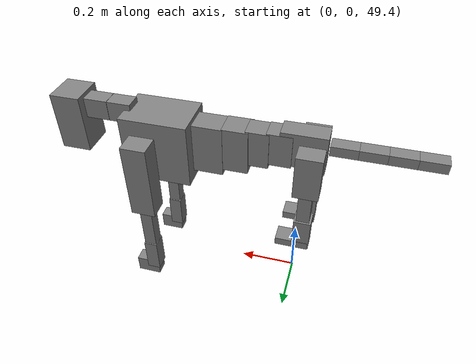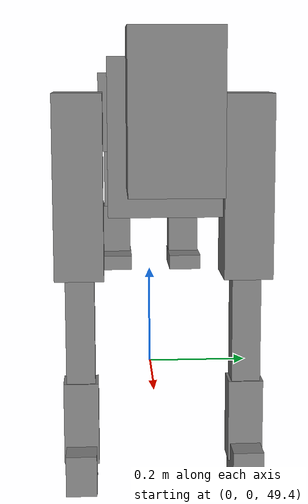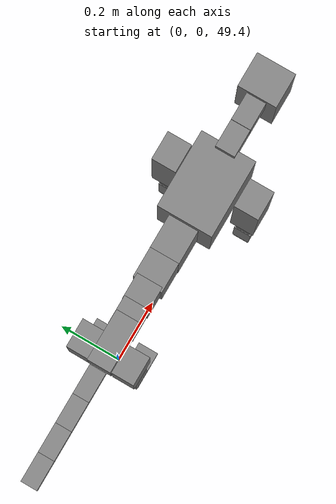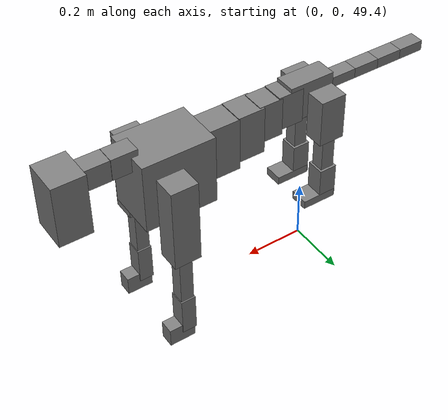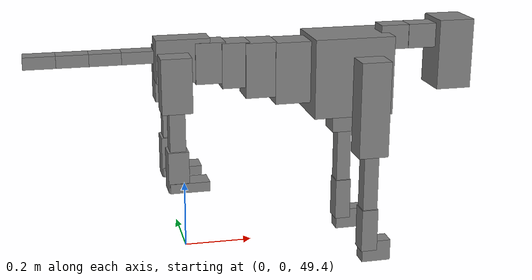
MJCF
<mujoco model="dog">

    <default>
        <joint armature="0.02" stiffness="1" damping="0.2" limited="true"/>
        <geom condim="3" friction="1 0.05 0.05" margin="0.01"/>
        <motor ctrllimited="true" ctrlrange="-1.0 1.0" forcelimited="true" gear="50"/>
    </default>

    <compiler inertiafromgeom="true" angle="radian"/>

    <option timestep="0.016" iterations="50" tolerance="1e-10" solver="Newton" jacobian="dense" cone="pyramidal"/>

    <size nconmax="20000" njmax="60000" nstack="5000000"/>
    <visual>
        <map force="0.1" zfar="30"/>
        <rgba haze="0.15 0.25 0.35 1"/>
        <quality shadowsize="2048"/>
        <global offwidth="800" offheight="800"/>
    </visual>

    <asset>
        <texture type="skybox" builtin="gradient" rgb1="0.3 0.5 0.7" rgb2="0 0 0" width="512" height="512"/>
        <texture name="texplane" type="2d" builtin="checker" rgb1=".2 .3 .4" rgb2=".1 0.15 0.2" width="512" height="512"
                 mark="cross" markrgb=".8 .8 .8"/>
        <texture name="texgeom" type="cube" builtin="flat" mark="cross" width="127" height="1278" rgb1="0.8 0.6 0.4"
                 rgb2="0.8 0.6 0.4" markrgb="1 1 1" random="0.01"/>

        <material name="matplane" reflectance="0.3" texture="texplane" texrepeat="1 1" texuniform="true"/>
        <material name="matgeom" texture="texgeom" texuniform="true" rgba="0.8 0.6 .4 1"/>
    </asset>

    <worldbody>
        <geom name="floor" pos="0 0 0" size="0 0 .25" type="plane" material="matplane" condim="3"/>

        <light directional="false" diffuse=".2 .2 .2" specular="0 0 0" pos="0 0 5" dir="0 0 -1" castshadow="false"/>
        <light mode="targetbodycom" target="torso" directional="false" diffuse=".8 .8 .8" specular="0.3 0.3 0.3"
               pos="0 0 4.0" dir="0 0 -1"/>

        <body name="root" pos="0 0 50">
            <freejoint name="root_1"/>
            <geom type="box" pos="0 0 -0.02" size="0.0774  0.0358  0.063" density="2030"/>

            <body name="spine1" pos="0.054 0 0">
                <joint name="spine1_y" axis="0 1 0" range="0 0.7" limited="true"/>
                <geom type="box" pos="0.02375 0 -0.03" size="0.04375  0.0375  0.05985" density="2030"/>

                <body name="spine2" pos="0.0612 0 0">
                    <joint name="spine2_y" axis="0 1 0" range="-0.15 0.15" limited="true"/>
                    <geom type="box" pos="0.03555  0  -0.04" size="0.04055  0.039  0.06615" density="2030"/>

                    <body name="spine3" pos="0.0730 0 0">
                        <joint name="spine3_y" axis="0 1 0" range="-0.15 0.15" limited="true"/>
                        <geom type="box" pos="0.03555  0  -0.057" size="0.04555  0.0445  0.081" density="2030"/>

                        <body name="spine4" pos="0.0780 0 0">
                            <joint name="spine4_y" axis="0 1 0" range="-0.15 0.15" limited="true"/>
                            <geom type="box" pos="0.05265  0  -0.07" size="0.05265  0.045  0.09135" density="2030"/>

                            <body name="torso" pos="0.1082 0 0">
                                <joint name="torso_y" axis="0 1 0" range="-0.15 0.15" limited="true"/>
                                <geom type="box" pos="0.11925  0  -0.085" size="0.11925  0.085  0.11745"
                                      density="2030"/>

                                <body name="neck1" pos="0.2160  0   0.0180">
                                    <joint name="neck1_y" axis="0 1 0" range="-1.2  -1" limited="true"/>
                                    <geom type="box" pos="0.0423  0  0" size="0.0423  0.03  0.036" density="2325"/>

                                    <body name="neck2" pos="0.0853  0  0">
                                        <joint name="neck2_y" axis="0 1 0" range="0.1  0" limited="true"/>
                                        <geom type="box" pos="0.0423  0  0" size="0.0423  0.03  0.036" density="2325"/>

                                        <body name="head" pos="0.0853  0  0">
                                            <joint name="head_y" axis="0 1 0" range="-0.3  -0.2" limited="true"/>
                                            <geom type="box" pos="0.0531  0  -0.055" size="0.0531  0.06  0.1044"
                                                  density="4030"/>

                                        </body>
                                    </body>
                                </body>

                                <body name="front_shoulder" pos="0.156  0   -0.0480">
                                    <joint name="front_shoulder_y" axis="0 1 0" range="-1 1.5" limited="true"/>
                                    <geom type="box" pos="0 0.13 -0.1157" size="0.0443  0.0379  0.1423" density="1158"/>
                                    <geom type="box" pos="0 -0.13 -0.1157" size="0.0443  0.0379  0.1423"
                                          density="1158"/>

                                    <body name="front_elbow" pos="0  0  -0.2314">
                                        <joint name="front_elbow_y" axis="0 1 0" range="-2 0" limited="true"/>
                                        <geom type="box" pos="0 0.13 -0.1038" size="0.0221  0.0226  0.1038"
                                              density="1081"/>
                                        <geom type="box" pos="0 -0.13 -0.1038" size="0.0221  0.0226  0.1038"
                                              density="1081"/>

                                        <body name="front_wrist" pos="0  0  -0.2076">
                                            <joint name="front_wrist_y" axis="0 1 0" range="-0.2 0" limited="true"/>
                                            <geom type="box" pos="0 0.13 -0.0523" size="0.0245  0.0273  0.0654"
                                                  density="1664"/>
                                            <geom type="box" pos="0 -0.13 -0.0523" size="0.0245  0.0273  0.0654"
                                                  density="1664"/>

                                            <body name="front_finger_end" pos="0  0  -0.1046">
                                                <joint name="front_finger_y" axis="0 1 0" range="-0.4 1"
                                                       limited="true"/>
                                                <geom type="box" pos="0.0240  0.13  -0.0172"
                                                      size="0.0440  0.0240  0.0322" density="1515"/>
                                                <geom type="box" pos="0.0240  -0.13  -0.0172"
                                                      size="0.0440  0.0240  0.0322" density="1515"/>

                                            </body>

                                        </body>
                                    </body>
                                </body>

                            </body>
                        </body>
                    </body>
                </body>
            </body>

            <body name="back_hip" pos="-0.03 0 -0.018">
                <joint name="back_hip_y" axis="0 1 0" range="-1.5 0.3" limited="true"/>
                <geom type="box" pos="0 0.07 -0.0568" size="0.0437  0.0343  0.0796" density="1154"/>
                <geom type="box" pos="0 -0.07 -0.0568" size="0.0437  0.0343  0.0796" density="1154"/>

                <body name="back_knee" pos="0  0  -0.1135">
                    <joint name="back_knee_y" axis="0 1 0" range="0 2.8" limited="true"/>
                    <geom type="box" pos="0 0.07 -0.0742" size="0.0229  0.0226  0.0898" density="1227"/>
                    <geom type="box" pos="0 -0.07 -0.0742" size="0.0229  0.0226  0.0898" density="1227"/>

                    <body name="back_ankle" pos="0  0  -0.1484">
                        <joint name="back_ankle_y" axis="0 1 0" range="-2.2 0" limited="true"/>
                        <geom type="box" pos="0 0.07 -0.0489" size="0.0299  0.0299  0.0602" density="1284"/>
                        <geom type="box" pos="0 -0.07 -0.0489" size="0.0299  0.0299  0.0602" density="1284"/>

                        <body name="back_toe_end" pos="0  0  -0.0978">
                            <joint name="back_toe_y" axis="0 1 0" range="-0.4 1" limited="true"/>
                            <geom type="box" pos="0.0314  0.07  0.0008" size="0.0576  0.0314  0.0142" density="1515"/>
                            <geom type="box" pos="0.0314  -0.07  0.0008" size="0.0576  0.0314  0.0142" density="1515"/>

                        </body>
                    </body>
                </body>
            </body>

            <body name="tail1" pos="-0.074 0 -0.006">
                <joint name="tail1_y" axis="0 1 0" range="-0.2 0.2" limited="true"/>
                <geom type="box" pos="-0.0536  0  0" size="0.045  0.025  0.0175" density="1587"/>

                <body name="tail2" pos="-0.09 0 0">
                    <joint name="tail2_y" axis="0 1 0" range="-0.2 0.2" limited="true"/>
                    <geom type="box" pos="-0.0536  0  0" size="0.045  0.025  0.0175" density="1587"/>

                    <body name="tail3" pos="-0.09 0 0">
                        <joint name="tail3_y" axis="0 1 0" range="-0.2 0.2" limited="true"/>
                        <geom type="box" pos="-0.0536  0  0" size="0.045  0.025  0.0175" density="1587"/>

                        <body name="tail4" pos="-0.09 0 0">
                            <joint name="tail4_y" axis="0 1 0" range="-0.2 0.2" limited="true"/>
                            <geom type="box" pos="-0.0536  0  0" size="0.045  0.025  0.0175" density="1587"/>

                        </body>
                    </body>
                </body>
            </body>
        </body>
    </worldbody>

    <actuator>
        <motor joint="spine1_y" forcerange="-150 150     "/>
        <motor joint="spine2_y" forcerange="-150 150     "/>
        <motor joint="spine3_y" forcerange="-150 150     "/>
        <motor joint="spine4_y" forcerange="-150 150     "/>
        <motor joint="torso_y" forcerange="-150 150     "/>
        <motor joint="neck1_y" forcerange="-100 100       "/>
        <motor joint="neck2_y" forcerange="-100 100       "/>
        <motor joint="head_y" forcerange="-150 150       "/>
        <motor joint="front_shoulder_y" forcerange="-170.09 182.31"/>
        <motor joint="front_elbow_y" forcerange="-137.10 127.37"/>
        <motor joint="front_wrist_y" forcerange="-83.16 135.01"/>
        <motor joint="front_finger_y" forcerange="-56.08 31.93"/>
        <motor joint="back_hip_y" forcerange="-284.19 372.62"/>
        <motor joint="back_knee_y" forcerange="-239.39 289.10"/>
        <motor joint="back_angle_y" forcerange="-245.10 133.90"/>
        <motor joint="back_toe_y" forcerange="-122.97 48.37"/>
        <motor joint="tail1_y" forcerange="-50 50     "/>
        <motor joint="tail2_y" forcerange="-50 50     "/>
        <motor joint="tail3_y" forcerange="-50 50     "/>
        <motor joint="tail4_y" forcerange="-50 50     "/>
    </actuator>
</mujoco>
